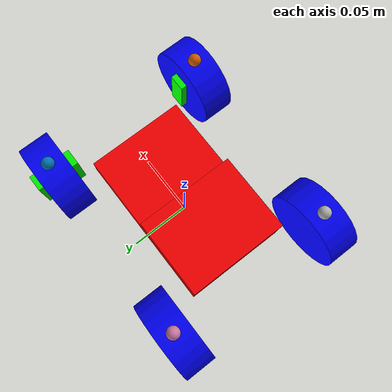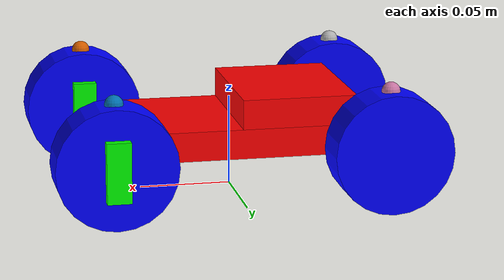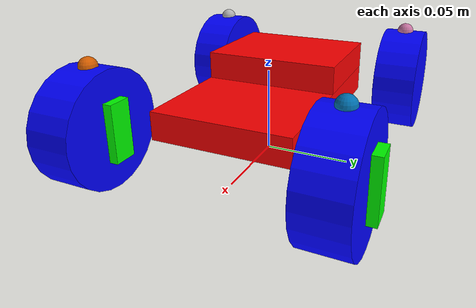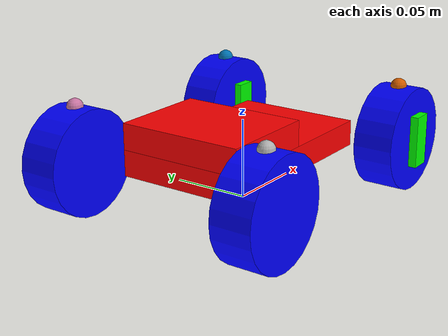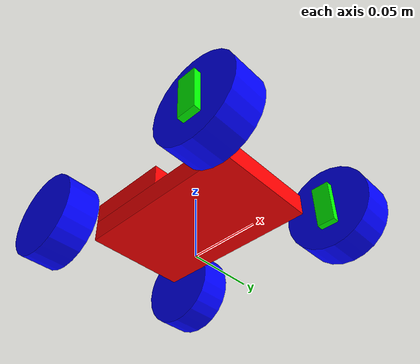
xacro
<?xml version="1.0"?>
<robot xmlns:xacro="http://ros.org/wiki/xacro" name="mi_robot">

  <xacro:include filename="colors.xacro"/> <!-- Include Colors-->
  <xacro:include filename="inertials.xacro"/> <!-- Include Inertia-->
  <xacro:property name="L" value="0.148" /><!-- WheelBase -->
  <xacro:property name="T" value="0.133" /><!-- Track -->
  <xacro:property name="r" value="0.0325" /><!-- WheelRadius -->
  <xacro:property name="w" value="0.025" /><!-- WheelWidth -->
  <xacro:property name="pi" value="3.14159"/>

  <xacro:property name="m_base" value="0.40"/>   <!-- kg -->
  <xacro:property name="m_wheel" value="0.03"/>  <!-- kg per wheel -->
  <xacro:property name="m_steer" value="0.015"/>  <!-- kg per steer -->

  <!-- LINKS DEL ROBOT-->
  <link name="base_footprint"/>

  <link name="base_link">
    <visual>
      <geometry>
        <box size="${0.85*L} ${0.6*T} ${0.5*r}"/>
      </geometry>
      <material name="red"/>
      <origin xyz="0 0 ${r}" rpy="0 0 0"/>
    </visual>
    <visual>
      <geometry>
        <box size="${0.425*L} ${0.6*T} ${0.5*r}"/>
      </geometry>
      <material name="red"/>
      <origin xyz="${-0.2125*L} 0 ${1.5*r}" rpy="0 0 0"/>
    </visual>

    <xacro:inertial_box mass="${m_base}"
                      x="${0.80*L}"
                      y="${0.50*T}"
                      z="${0.40*r}"
                      origin_xyz="0 0 ${r}"
                      origin_rpy="0 0 0"/>

  </link>

  <link name="front_left_steer">
    <visual>
      <geometry>
         <box size="${r*.4} ${w+0.01} ${r}"/>
      </geometry>
      <material name="green"/>
    </visual>
    <inertial>
      <origin xyz="0 0 0" rpy="0 0 0"/>
      <mass value="${m_steer}"/>
      <inertia ixx="${(m_steer/12.0)*((w+0.01)*(w+0.01) + r*r)}"
              iyy="${(m_steer/12.0)*(1.16*r*r)}"
              izz="${(m_steer/12.0)*(0.16*r*r + (w+0.01)*(w+0.01))}"
              ixy="0" ixz="0" iyz="0"/>
    </inertial>
  </link>

  <link name="front_right_steer">
    <visual>
      <geometry>
         <box size="${r*.4} ${w+0.01} ${r}"/>
      </geometry>
      <material name="green"/>
    </visual>
    <inertial>
      <origin xyz="0 0 0" rpy="0 0 0"/>
      <mass value="${m_steer}"/>
      <inertia ixx="${(m_steer/12.0)*((w+0.01)*(w+0.01) + r*r)}"
              iyy="${(m_steer/12.0)*(1.16*r*r)}"
              izz="${(m_steer/12.0)*(0.16*r*r + (w+0.01)*(w+0.01))}"
              ixy="0" ixz="0" iyz="0"/>
    </inertial>
  </link>

  <link name="front_left_wheel">
    <visual>
      <geometry>
         <cylinder radius="${r}" length="${w}"/>
      </geometry>
      <material name="blue"/>
      <origin xyz="0 0 0" rpy="${-pi/2} 0 0"/>
    </visual>
    <visual>
      <geometry>
          <sphere radius="0.005"/>
      </geometry>
      <origin xyz="0 0 ${r}" rpy="0 0 0"/>
    </visual>
    <xacro:inertial_cylinder mass="${m_wheel}"
                         radius="${r}"
                         length="${w}"
                         origin_xyz="0 0 0"
                         origin_rpy="${-pi/2} 0 0"/>
  </link>

  <link name="front_right_wheel">
    <visual>
      <geometry>
         <cylinder radius="${r}" length="${w}"/>
      </geometry>
      <material name="blue"/>
      <origin xyz="0 0 0" rpy="${-pi/2} 0 0"/>
    </visual>
    <visual>
      <geometry>
          <sphere radius="0.005"/>
      </geometry>
      <origin xyz="0 0 ${r}" rpy="0 0 0"/>
    </visual>
    <xacro:inertial_cylinder mass="${m_wheel}"
                         radius="${r}"
                         length="${w}"
                         origin_xyz="0 0 0"
                         origin_rpy="${-pi/2} 0 0"/>
  </link>

  <link name="back_left_wheel">
    <visual>
      <geometry>
         <cylinder radius="${r}" length="${w}"/>
      </geometry>
      <material name="blue"/>
      <origin xyz="0 0 0" rpy="${-pi/2} 0 0"/>
    </visual>
    <visual>
      <geometry>
          <sphere radius="0.005"/>
      </geometry>
      <origin xyz="0 0 ${r}" rpy="0 0 0"/>
    </visual>
    <xacro:inertial_cylinder mass="${m_wheel}"
                         radius="${r}"
                         length="${w}"
                         origin_xyz="0 0 0"
                         origin_rpy="${-pi/2} 0 0"/>
  </link>

  <link name="back_right_wheel">
    <visual>
      <geometry>
         <cylinder radius="${r}" length="${w}"/>
      </geometry>
      <material name="blue"/>
      <origin xyz="0 0 0" rpy="${-pi/2} 0 0"/>
    </visual>
    <visual>
      <geometry>
          <sphere radius="0.005"/>
      </geometry>
      <origin xyz="0 0 ${r}" rpy="0 0 0"/>
    </visual>
    <xacro:inertial_cylinder mass="${m_wheel}"
                         radius="${r}"
                         length="${w}"
                         origin_xyz="0 0 0"
                         origin_rpy="${-pi/2} 0 0"/>
  </link>

  <!-- JOINTS DEL ROBOT-->

  <!-- 2) Fija base_footprint -> base_link -->
  <joint name="base_footprint_to_base_link" type="fixed">
    <parent link="base_footprint"/>
    <child link="base_link"/>
    <!-- Si tu base_link ya está a z=0 en el suelo, deja en 0 -->
    <origin xyz="0 0 0" rpy="0 0 0"/>
  </joint>

  <joint name="joint_base_lsteer" type="revolute">
    <parent link="base_link"/>
    <child link="front_left_steer"/>
    <origin xyz="${0.5*L} ${0.5*T} ${r}" rpy="0 0 0"/>
    <axis xyz="0 0 1"/>
    <limit lower="-0.6" upper="0.6" effort="1" velocity="2.0"/>
    <dynamics damping="0.1" friction="0.02"/>
  </joint>

  <joint name="joint_base_rsteer" type="revolute">
    <parent link="base_link"/>
    <child link="front_right_steer"/>
    <origin xyz="${0.5*L} ${-0.5*T} ${r}" rpy="0 0 0"/>
    <axis xyz="0 0 1"/>
    <limit lower="-0.6" upper="0.6" effort="1" velocity="2.0"/>
    <dynamics damping="0.1" friction="0.02"/>
  </joint>

  <joint name="joint_steer_lfwheel" type="continuous">
    <parent link="front_left_steer"/>
    <child link="front_left_wheel"/>
    <origin xyz="0 0 0" rpy="0 0 0"/>
    <axis xyz="0 1 0"/>
  </joint>

  <joint name="joint_steer_rfwheel" type="continuous">
    <parent link="front_right_steer"/>
    <child link="front_right_wheel"/>
    <origin xyz="0 0 0" rpy="0 0 0"/>
    <axis xyz="0 1 0"/>
  </joint>

  <joint name="joint_base_lbwheel" type="continuous">
    <parent link="base_link"/>
    <child link="back_left_wheel"/>
    <origin xyz="${-0.5*L} ${0.5*T} ${r}" rpy="0 0 0"/>
    <axis xyz="0 1 0"/>
  </joint>

  <joint name="joint_base_rbwheel" type="continuous">
    <parent link="base_link"/>
    <child link="back_right_wheel"/>
    <origin xyz="${-0.5*L} ${-0.5*T} ${r}" rpy="0 0 0"/>
    <axis xyz="0 1 0"/>
  </joint>

</robot>

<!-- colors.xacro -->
<robot xmlns:xacro="http://ros.org/wiki/xacro" name="mi_robot">

  <material name="grey">
    <color rgba="0.5 0.5 0.5 1.0"/>
  </material>
  <material name="black">
    <color rgba="0.0 0.0 0.0 1.0"/>
  </material>
  <material name="red">
    <color rgba="1.0 0.0 0.0 1.0"/>
  </material>
  <material name="blue">
    <color rgba="0.0 0.0 1.0 1.0"/>
  </material>
  <material name="green">
    <color rgba="0.0 1.0 0.0 1.0"/>
  </material>
  <material name="yellow">
    <color rgba="1.0 1.0 0.0 1.0"/>
  </material>
  <material name="brown">
    <color rgba="0.5 0.25 0.0 1.0"/>
  </material>
  <material name="orange">
    <color rgba="1.0 0.5 0.0 1.0"/>
  </material>
  <material name="white">
    <color rgba="1.0 1.0 1.0 1.0"/>
  </material>

</robot>

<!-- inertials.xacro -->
<robot xmlns:xacro="http://www.ros.org/wiki/xacro">

  <!-- Box inertial + collision -->
  <xacro:macro name="inertial_box" params="mass x y z origin_xyz:='0 0 0' origin_rpy:='0 0 0'">
    <inertial>
      <origin xyz="${origin_xyz}" rpy="${origin_rpy}"/>
      <mass value="${mass}"/>
      <inertia ixx="${(mass/12.0)*(y*y+z*z)}"
               iyy="${(mass/12.0)*(x*x+z*z)}"
               izz="${(mass/12.0)*(x*x+y*y)}"
               ixy="0" ixz="0" iyz="0"/>
    </inertial>
    <collision>
      <origin xyz="${origin_xyz}" rpy="${origin_rpy}"/>
      <geometry>
        <box size="${x} ${y} ${z}"/>
      </geometry>
    </collision>
  </xacro:macro>

  <!-- Cylinder inertial + collision (axis along Z by default) -->
  <xacro:macro name="inertial_cylinder" params="mass radius length origin_xyz:='0 0 0' origin_rpy:='0 0 0'">
    <inertial>
      <origin xyz="${origin_xyz}" rpy="${origin_rpy}"/>
      <mass value="${mass}"/>
      <inertia ixx="${(mass/12.0)*(3*radius*radius + length*length)}"
               iyy="${(mass/12.0)*(3*radius*radius + length*length)}"
               izz="${0.5*mass*radius*radius}"
               ixy="0" ixz="0" iyz="0"/>
    </inertial>
    <collision>
      <origin xyz="${origin_xyz}" rpy="${origin_rpy}"/>
      <geometry>
        <cylinder radius="${radius}" length="${length}"/>
      </geometry>
    </collision>
  </xacro:macro>

</robot>
